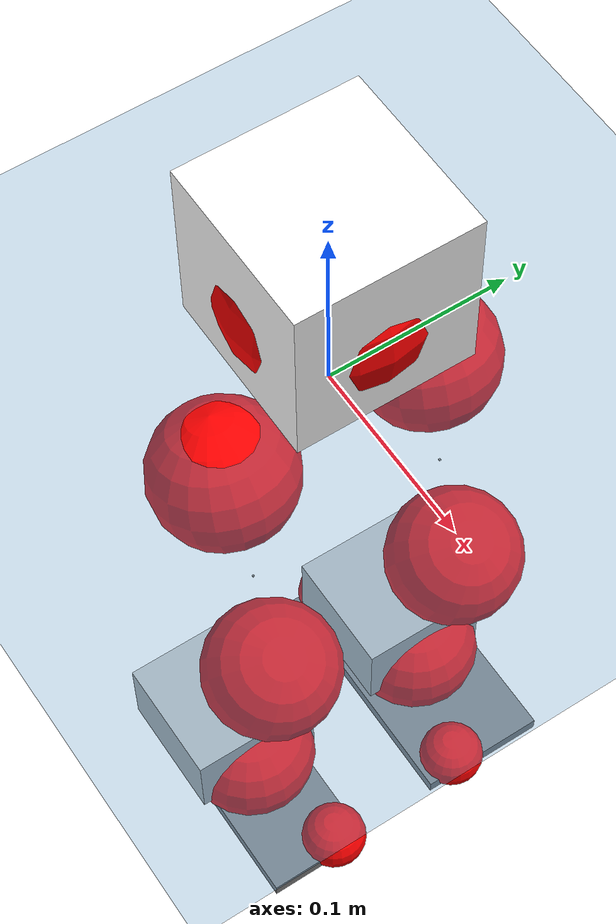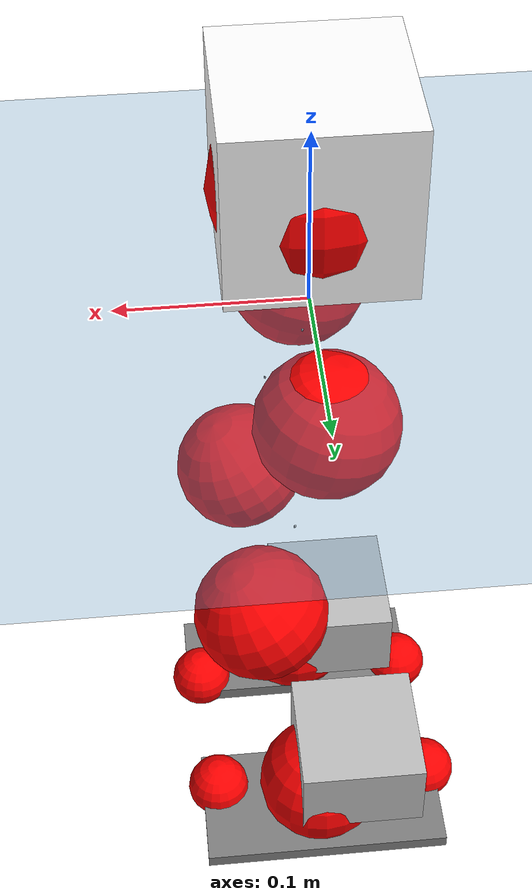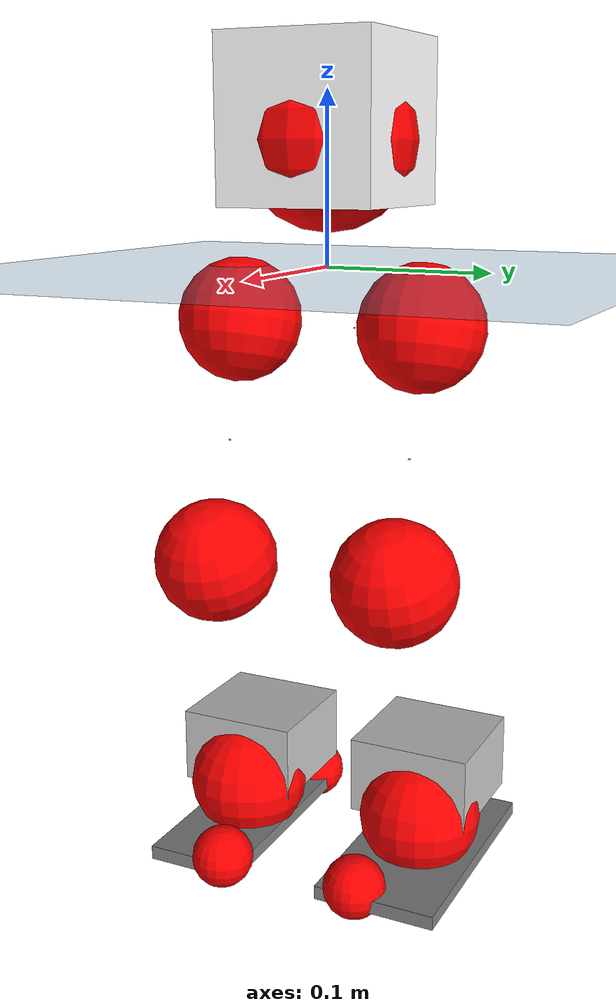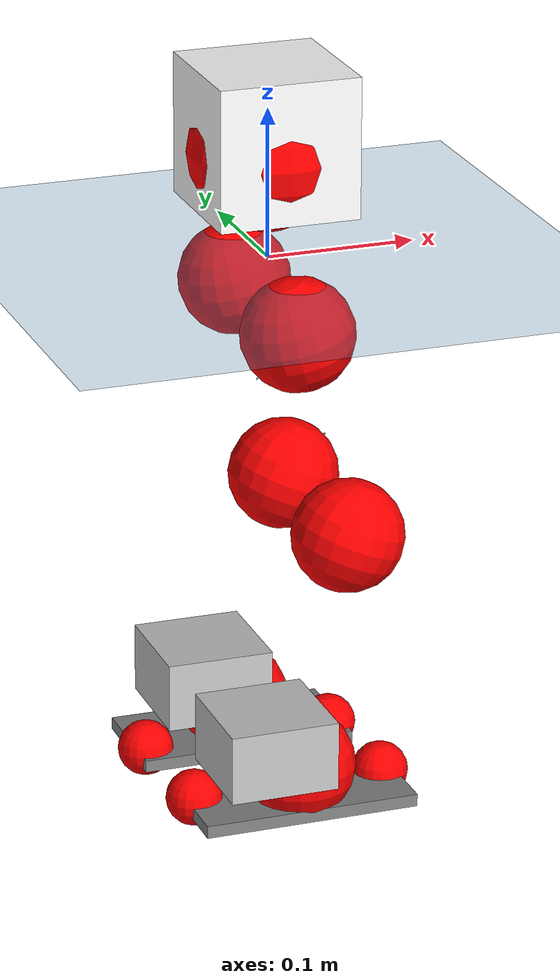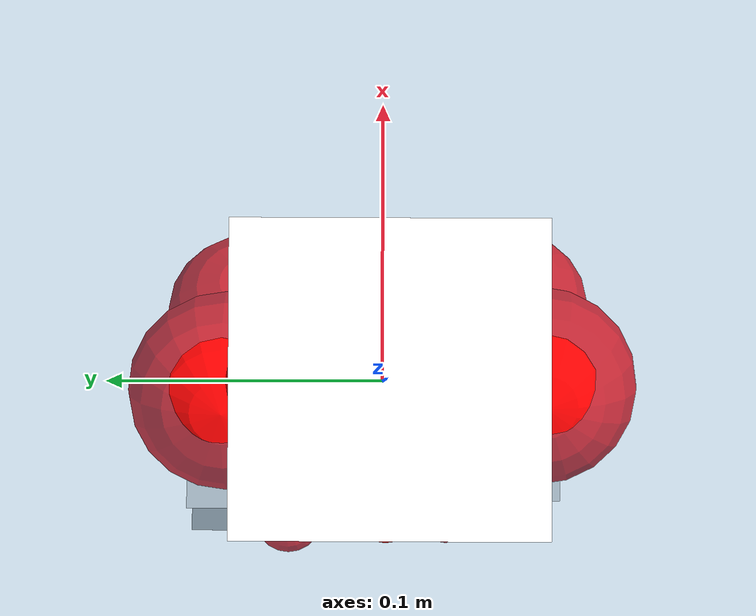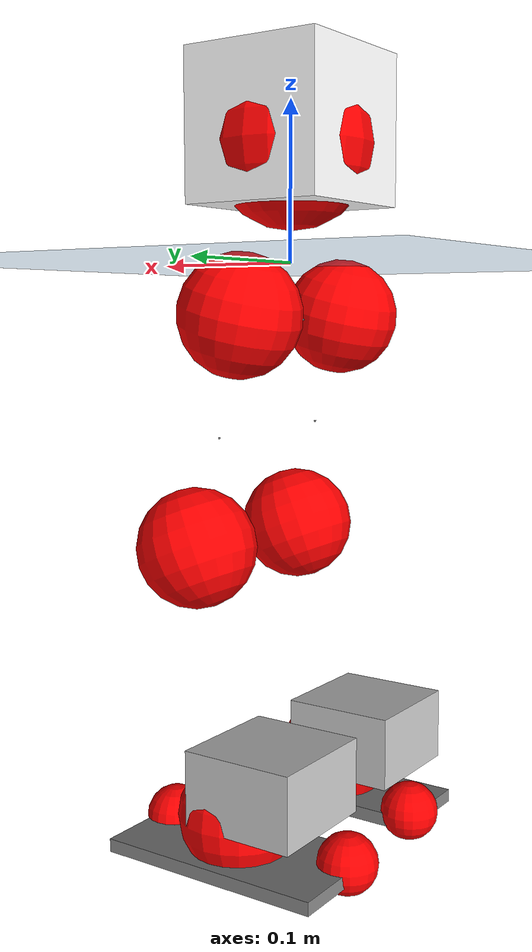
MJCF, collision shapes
<mujoco model="pi_12dof_release_v1">
  <compiler angle="radian" assetdir="assets" balanceinertia="true" inertiafromgeom="false"/>

  <option timestep="0.005" density="1.2" viscosity="2e-05"/>

  <size nkey="1"/>

  <visual>
    <quality shadowsize="8192"/>
    <map shadowclip="0.5"/>
  </visual>

  <default>
    <default class="/">
      <joint armature="0.01" damping="0.01" frictionloss="0.01"/>
      <geom contype="0" conaffinity="0" group="1" solref="-1000 -80"/>
      <site size="0.01 0.005 0.005" group="5"/>
      <general forcelimited="true" biastype="affine" gainprm="20" biasprm="0 -20 -0.5"/>
      <default class="foot">
        <geom size="0.0845 0.036 0.005" type="box" condim="6" group="4" priority="1" friction="0.9 0.2 0.2" solimp="0.015 1 0.005"/>
      </default>
      <default class="reward_collision_sphere">
        <geom group="5" rgba="1 0 0 1"/>
      </default>
    </default>
  </default>

  <asset>
    <texture type="skybox" colorspace="auto" name="//unnamed_texture_0" builtin="gradient" rgb1="0.95 0.95 0.95" rgb2="0.95 0.95 0.95" width="100" height="600"/>
    <texture type="2d" colorspace="auto" name="texplane" builtin="checker" rgb1="0.345 0.575 0.748" rgb2="0.345 0.575 0.748" markrgb="1 1 1" width="512" height="512"/>
    <material name="MatPlane" class="/" texture="texplane" texuniform="true" texrepeat="2 2" specular="0.9"/>
    <mesh name="baselink_1" class="/" file="baselink_1.STL"/>
    <mesh name="r_hip_pitch_link" class="/" file="r_hip_pitch_link.STL"/>
    <mesh name="r_hip_roll_link" class="/" file="r_hip_roll_link.STL"/>
    <mesh name="r_thigh_link" class="/" file="r_thigh_link.STL"/>
    <mesh name="r_calf_link" class="/" file="r_calf_link.STL"/>
    <mesh name="r_ankle_pitch_link" class="/" file="r_ankle_pitch_link.STL"/>
    <mesh name="r_ankle_roll_link" class="/" file="r_ankle_roll_link.STL"/>
    <mesh name="l_hip_pitch_link" class="/" file="l_hip_pitch_link.STL"/>
    <mesh name="l_hip_roll_link" class="/" file="l_hip_roll_link.STL"/>
    <mesh name="l_thigh_link" class="/" file="l_thigh_link.STL"/>
    <mesh name="l_calf_link" class="/" file="l_calf_link.STL"/>
    <mesh name="l_ankle_pitch_link" class="/" file="l_ankle_pitch_link.STL"/>
    <mesh name="l_ankle_roll_link" class="/" file="l_ankle_roll_link.STL"/>
  </asset>

  <worldbody>
    <geom name="floor" class="/" size="100 100 0.125" type="plane" group="0" material="MatPlane"/>
    <light name="toplight_shadow" class="/" pos="0 0 5" dir="0.0990148 0.0990148 -0.990148" type="directional" ambient="0.04 0.04 0.04" diffuse="0.55 0.55 0.55" specular="0.12 0.12 0.12"/>
    <light name="toplight_fill" class="/" pos="0 0 5" dir="0.0990148 0.0990148 -0.990148" type="directional" castshadow="false" ambient="0.04 0.04 0.04" diffuse="0.3 0.3 0.3" specular="0.08 0.08 0.08"/>
    <body name="trunk" pos="-0.00103795 0.000202392 -0.00232591" quat="0.999999 4.47184e-05 0.000799378 -0.0010215">
      <inertial pos="0.00033743 0.0019007 0.0427571" quat="0.695171 -0.00339459 0.0120891 0.718735" mass="1.79288" diaginertia="0.00890103 0.00303231 0.00558876"/>
      <joint name="//unnamed_joint_0" type="free"/>
      <geom name="//unnamed_geom_1" class="/" type="mesh" density="0" rgba="1 1 1 1" mesh="baselink_1"/>
      <geom name="//unnamed_geom_2" class="/" size="0.0471235 0.0471235 0.0471235" pos="0 0 0.0844129" type="box" rgba="1 1 1 1"/>
      <geom name="//unnamed_geom_3" class="reward_collision_sphere" size="0.0518359" pos="0 0 0.0738613"/>
      <site name="imu" class="/" pos="-0.00470642 0.0108793 -0.0139219" size="0.00942471"/>
      <camera name="track" class="/" pos="0 -1.59675 0" quat="0.707107 0.707107 0 0" mode="trackcom"/>
      <camera name="ego_camera" class="/" pos="0.0730407 0 0.189929" quat="-0.5 -0.5 0.5 0.5"/>
      <body name="r_hip_pitch_link" pos="0.00252684 -0.017063 -0.0330411" quat="0.992199 2.2971e-07 -0.124665 1.03159e-05">
        <inertial pos="-0.00176704 -0.0446153 -0.00246555" quat="-0.0138854 0.706599 -0.0391354 0.706394" mass="0.301776" diaginertia="9.5731e-05 3.10273e-05 0.000105866"/>
        <joint name="r_hip_pitch_joint" class="/" pos="0 0 0" axis="0.000324771 -0.999997 0.00242158" range="-1.76613 1.2566" armature="0.00974568" damping="0.00882255" frictionloss="0.00892758"/>
        <geom name="//unnamed_geom_4" class="/" type="mesh" density="0" rgba="0.75294 0.75294 0.75294 1" mesh="r_hip_pitch_link"/>
        <geom name="//unnamed_geom_5" class="/" size="0.000471235 0.000471235 0.000471235" type="box" rgba="0.75294 0.75294 0.75294 1"/>
        <body name="r_hip_roll_link" pos="-0.00151552 -0.0420599 0.00257873" quat="1 0.000296539 0.000274151 -7.39266e-05">
          <inertial pos="-0.00289458 -0.000228258 -0.0633911" quat="0.705645 -0.0792367 -0.0830882 0.699201" mass="0.311396" diaginertia="0.000279614 8.72121e-05 0.000156503"/>
          <joint name="r_hip_roll_joint" class="/" pos="0 0 0" axis="-0.999911 -0.00738638 0.0110869" stiffness="0.00136051" range="-0.127476 0.499776" armature="0.00841533" damping="0.0110254" frictionloss="0.0105053"/>
          <geom name="//unnamed_geom_6" class="/" type="mesh" density="0" rgba="0.75294 0.75294 0.75294 1" mesh="r_hip_roll_link"/>
          <geom name="//unnamed_geom_7" class="/" size="0.000471235 0.000471235 0.000471235" type="box" rgba="0.75294 0.75294 0.75294 1"/>
          <geom name="//unnamed_geom_8" class="reward_collision_sphere" size="0.0376988"/>
          <body name="r_thigh_link" pos="0.00100852 0.00177079 -0.0735326" quat="1 -0.000131525 -0.000426737 -3.97178e-05">
            <inertial pos="-0.00161937 -0.00173204 -0.0509537" quat="0.737445 0.675407 0.000162838 4.59777e-05" mass="0.0946453" diaginertia="0.000105592 3.03039e-05 7.53233e-05"/>
            <joint name="r_thigh_joint" class="/" pos="0 0 0" axis="-0.00431871 0.00154579 -0.999989" stiffness="0.00519969" range="-0.335891 0.648218" armature="0.00850897" damping="0.0182272" frictionloss="0.00991412"/>
            <geom name="//unnamed_geom_9" class="/" type="mesh" density="0" rgba="0.75294 0.75294 0.75294 1" mesh="r_thigh_link"/>
            <geom name="//unnamed_geom_10" class="/" size="0.000471235 0.000471235 0.000471235" type="box" rgba="0.75294 0.75294 0.75294 1"/>
            <body name="r_calf_link" pos="-0.00223135 -0.00182848 -0.073789" quat="0.947971 -0.000318942 0.318355 0.000305052">
              <inertial pos="-0.00165887 -0.000560734 -0.0735867" quat="0.999887 -0.00666915 0.00978899 0.00930002" mass="0.69985" diaginertia="0.00304333 0.00112729 0.000225072"/>
              <joint name="r_calf_joint" class="/" pos="0 0 0" axis="7.4676e-05 -1 -0.000631064" range="-1.65575 0.685753" armature="0.00935901" damping="0.0099492" frictionloss="0.00907341"/>
              <geom name="//unnamed_geom_11" class="/" type="mesh" density="0" rgba="0.75294 0.75294 0.75294 1" mesh="r_calf_link"/>
              <geom name="//unnamed_geom_12" class="/" size="0.000471235 0.000471235 0.000471235" type="box" rgba="0.75294 0.75294 0.75294 1"/>
              <geom name="//unnamed_geom_13" class="reward_collision_sphere" size="0.0376988"/>
              <body name="r_ankle_pitch_link" pos="0.00189291 -0.000442371 -0.149738" quat="0.980156 0.000322307 -0.198224 0.000511792">
                <inertial pos="0.00314784 0.00314677 -0.000604907" quat="0.00226295 0.707087 -0.00115898 0.707122" mass="0.15266" diaginertia="0.000270484 6.95517e-05 0.000159415"/>
                <joint name="r_ankle_pitch_joint" class="/" pos="0 0 0" axis="0.00156858 -0.999941 -0.0107688" range="-1.33754 0.502571" armature="0.00908923" damping="0.0197023" frictionloss="0.00892317"/>
                <geom name="//unnamed_geom_14" class="/" type="mesh" density="0" rgba="0.75294 0.75294 0.75294 1" mesh="r_ankle_pitch_link"/>
                <geom name="//unnamed_geom_15" class="/" size="0.0367564 0.0376988 0.0235618" type="box" rgba="0.75294 0.75294 0.75294 1"/>
                <body name="r_ankle_roll_link" pos="0.0724722 0.00234904 0.000622044" quat="1 -0.000180006 -7.63258e-05 0.000394181">
                  <inertial pos="-0.0230171 -0.00253736 -0.0126561" quat="0.553208 0.434324 0.441062 0.557484" mass="0.425464" diaginertia="0.00096288 0.000334627 0.000347505"/>
                  <joint name="r_ankle_roll_joint" class="/" pos="0 0 0" axis="-1 -0.000565411 0.000478223" range="-0.190672 0.196023" armature="0.00814372" damping="0" frictionloss="0.00821451"/>
                  <geom name="//unnamed_geom_16" class="/" type="mesh" density="0" rgba="0.75294 0.75294 0.75294 1" mesh="r_ankle_roll_link"/>
                  <geom name="//unnamed_geom_17" class="/" type="mesh" rgba="0.75294 0.75294 0.75294 1" mesh="r_ankle_roll_link"/>
                  <geom name="right_foot" class="foot" size="0.0734257 0.0298496 0.00424275" pos="-0.0496677 0 -0.0464271"/>
                  <geom name="//unnamed_geom_19" class="reward_collision_sphere" size="0.0376988" pos="-0.0486938 0 -0.0211032"/>
                  <geom name="//unnamed_geom_20" class="reward_collision_sphere" size="0.0188494" pos="0.0146081 0.0159675 -0.0422065"/>
                  <geom name="//unnamed_geom_21" class="reward_collision_sphere" size="0.0188494" pos="-0.116865 0.0159675 -0.0422065"/>
                  <site name="right_foot" class="foot" pos="-0.0496677 0 -0.0464271" size="0.00942471"/>
                </body>
              </body>
            </body>
          </body>
        </body>
      </body>
      <body name="l_hip_pitch_link" pos="-0.00100046 0.0161452 -0.0322578" quat="0.992199 1.48889e-05 -0.124662 -1.64519e-05">
        <inertial pos="-0.000125837 0.0403174 -0.00206687" quat="-0.03698 0.708408 0.0294167 0.70422" mass="0.321189" diaginertia="0.00010725 3.35554e-05 0.000123746"/>
        <joint name="l_hip_pitch_joint" class="/" pos="0 0 0" axis="-0.0111325 0.999889 -0.00986309" range="-1.2944 1.71739" armature="0.00933173" damping="0" frictionloss="0.010307"/>
        <geom name="//unnamed_geom_22" class="/" type="mesh" density="0" rgba="0.75294 0.75294 0.75294 1" mesh="l_hip_pitch_link"/>
        <geom name="//unnamed_geom_23" class="/" size="0.000471235 0.000471235 0.000471235" type="box" rgba="0.75294 0.75294 0.75294 1"/>
        <body name="l_hip_roll_link" pos="-0.000514729 0.0418675 0.0020298" quat="0.999999 -0.00099804 -0.000820419 -8.29514e-05">
          <inertial pos="0.000442806 -0.00280313 -0.0665033" quat="0.699364 -0.075044 -0.0778325 0.706541" mass="0.333239" diaginertia="0.000308392 9.09103e-05 0.000177604"/>
          <joint name="l_hip_roll_joint" class="/" pos="0 0 0" axis="-0.999999 0.000290418 0.00137955" stiffness="0.00158117" range="-0.497868 0.0712925" armature="0.00826873" damping="0.0168478" frictionloss="0.00940657"/>
          <geom name="//unnamed_geom_24" class="/" type="mesh" density="0" rgba="0.75294 0.75294 0.75294 1" mesh="l_hip_roll_link"/>
          <geom name="//unnamed_geom_25" class="/" size="0.000471235 0.000471235 0.000471235" type="box" rgba="0.75294 0.75294 0.75294 1"/>
          <geom name="//unnamed_geom_26" class="reward_collision_sphere" size="0.0376988"/>
          <body name="l_thigh_link" pos="-0.00280551 0.000114609 -0.0749613" quat="0.999999 -0.000767669 0.000842661 -0.000740796">
            <inertial pos="-0.00193496 0.000749428 -0.0524859" quat="0.677239 0.735646 -0.00833259 -0.0101879" mass="0.0910679" diaginertia="0.000105405 2.90218e-05 7.42771e-05"/>
            <joint name="l_thigh_joint" class="/" pos="0 0 0" axis="0.000303967 -0.000461137 -1" stiffness="0.00218286" range="-0.603132 0.324996" armature="0.00958154" damping="0" frictionloss="0.0104603"/>
            <geom name="//unnamed_geom_27" class="/" type="mesh" density="0" rgba="0.75294 0.75294 0.75294 1" mesh="l_thigh_link"/>
            <geom name="//unnamed_geom_28" class="/" size="0.000471235 0.000471235 0.000471235" type="box" rgba="0.75294 0.75294 0.75294 1"/>
            <body name="l_calf_link" pos="0.000896211 -0.000215515 -0.0718556" quat="0.947595 -5.96402e-05 0.319474 -4.66988e-05">
              <inertial pos="-0.00255203 -0.00010125 -0.0739671" quat="0.999871 0.0112508 -0.0105669 0.00438497" mass="0.68457" diaginertia="0.00327444 0.00117495 0.000240464"/>
              <joint name="l_calf_joint" class="/" pos="0 0 0" axis="0.00988158 0.999928 -0.00682188" range="-0.705279 1.70512" armature="0.00923284" damping="0" frictionloss="0.0105834"/>
              <geom name="//unnamed_geom_29" class="/" type="mesh" density="0" rgba="0.75294 0.75294 0.75294 1" mesh="l_calf_link"/>
              <geom name="//unnamed_geom_30" class="/" size="0.000471235 0.000471235 0.000471235" type="box" rgba="0.75294 0.75294 0.75294 1"/>
              <geom name="//unnamed_geom_31" class="reward_collision_sphere" size="0.0376988"/>
              <body name="l_ankle_pitch_link" pos="0.00108113 0.00130226 -0.149057" quat="0.980091 0.000273121 -0.198546 0.000504132">
                <inertial pos="0.00632993 -0.00307314 -0.0027144" quat="-0.0146234 0.707819 0.000557418 0.706242" mass="0.143241" diaginertia="0.000278651 7.14338e-05 0.000155317"/>
                <joint name="l_ankle_pitch_joint" class="/" pos="0 0 0" axis="0.00182007 0.999998 0.000895933" stiffness="0.01122" range="-0.558007 1.28896" armature="0.00878709" damping="0.000461885" frictionloss="0.00810824"/>
                <geom name="//unnamed_geom_32" class="/" type="mesh" density="0" rgba="0.75294 0.75294 0.75294 1" mesh="l_ankle_pitch_link"/>
                <geom name="//unnamed_geom_33" class="/" size="0.0367564 0.0376988 0.0235618" type="box" rgba="0.75294 0.75294 0.75294 1"/>
                <body name="l_ankle_roll_link" pos="0.0710758 0.00326597 -0.00254176" quat="1 0.000206704 0.000217117 0.000909669">
                  <inertial pos="-0.0235759 -0.000309078 -0.0158637" quat="0.568077 0.420865 0.436564 0.556392" mass="0.451788" diaginertia="0.0010332 0.000352119 0.000368807"/>
                  <joint name="l_ankle_roll_joint" class="/" pos="0 0 0" axis="-1 -8.33793e-05 -0.000674289" stiffness="0.000913962" range="-0.169606 0.113246" armature="0.00917558" damping="0" frictionloss="0.00865871"/>
                  <geom name="//unnamed_geom_34" class="/" type="mesh" density="0" rgba="0.75294 0.75294 0.75294 1" mesh="l_ankle_roll_link"/>
                  <geom name="//unnamed_geom_35" class="/" type="mesh" rgba="0.75294 0.75294 0.75294 1" mesh="l_ankle_roll_link"/>
                  <geom name="left_foot" class="foot" size="0.0741289 0.0376477 0.00416438" pos="-0.0496677 0 -0.0464271"/>
                  <geom name="//unnamed_geom_37" class="reward_collision_sphere" size="0.0376988" pos="-0.0486938 0 -0.0211032"/>
                  <geom name="//unnamed_geom_38" class="reward_collision_sphere" size="0.0188494" pos="0.0146081 -0.0159675 -0.0422065"/>
                  <geom name="//unnamed_geom_39" class="reward_collision_sphere" size="0.0188494" pos="-0.116865 -0.0159675 -0.0422065"/>
                  <site name="left_foot" class="foot" pos="-0.0496677 0 -0.0464271" size="0.00942471"/>
                </body>
              </body>
            </body>
          </body>
        </body>
      </body>
    </body>
  </worldbody>

  <contact>
    <pair class="/" geom1="floor" geom2="right_foot" name="//unnamed_contact_1"/>
    <pair class="/" geom1="floor" geom2="left_foot" name="//unnamed_contact_0"/>
  </contact>

  <actuator>
    <general name="r_hip_pitch_joint" class="/" joint="r_hip_pitch_joint" forcerange="-21.8854 21.8854" gainprm="17.9855" biasprm="0 -17.9855 -0.441015"/>
    <general name="r_hip_roll_joint" class="/" joint="r_hip_roll_joint" forcerange="-18.2392 18.2392" gainprm="17.9855" biasprm="0 -17.9855 -0.441015"/>
    <general name="r_thigh_joint" class="/" joint="r_thigh_joint" forcerange="-19.6689 19.6689" gainprm="17.9855" biasprm="0 -17.9855 -0.441015"/>
    <general name="r_calf_joint" class="/" joint="r_calf_joint" forcerange="-21.2151 21.2151" gainprm="17.9855" biasprm="0 -17.9855 -0.441015"/>
    <general name="r_ankle_pitch_joint" class="/" joint="r_ankle_pitch_joint" forcerange="-18.8267 18.8267" gainprm="17.9855" biasprm="0 -17.9855 -0.441015"/>
    <general name="r_ankle_roll_joint" class="/" joint="r_ankle_roll_joint" forcerange="-18.1746 18.1746" gainprm="17.9855" biasprm="0 -17.9855 -0.441015"/>
    <general name="l_hip_pitch_joint" class="/" joint="l_hip_pitch_joint" forcerange="-19.507 19.507" gainprm="17.9855" biasprm="0 -17.9855 -0.441015"/>
    <general name="l_hip_roll_joint" class="/" joint="l_hip_roll_joint" forcerange="-19.0826 19.0826" gainprm="17.9855" biasprm="0 -17.9855 -0.441015"/>
    <general name="l_thigh_joint" class="/" joint="l_thigh_joint" forcerange="-21.3334 21.3334" gainprm="17.9855" biasprm="0 -17.9855 -0.441015"/>
    <general name="l_calf_joint" class="/" joint="l_calf_joint" forcerange="-20.5606 20.5606" gainprm="17.9855" biasprm="0 -17.9855 -0.441015"/>
    <general name="l_ankle_pitch_joint" class="/" joint="l_ankle_pitch_joint" forcerange="-21.197 21.197" gainprm="17.9855" biasprm="0 -17.9855 -0.441015"/>
    <general name="l_ankle_roll_joint" class="/" joint="l_ankle_roll_joint" forcerange="-19.3961 19.3961" gainprm="17.9855" biasprm="0 -17.9855 -0.441015"/>
  </actuator>

  <sensor>
    <gyro site="imu" name="imu_angular_velocity"/>
    <velocimeter site="imu" name="imu_linear_velocity"/>
    <framelinvel objtype="site" objname="left_foot" name="left_foot_global_linear_velocity"/>
    <framelinvel objtype="site" objname="right_foot" name="right_foot_global_linear_velocity"/>
  </sensor>

  <keyframe>
    <key name="home" qpos="0 0 0.291 1 0 0 0 0.4 0 0 -0.8 0.4 0 -0.4 0 0 0.8 -0.4 0"/>
  </keyframe>
</mujoco>
